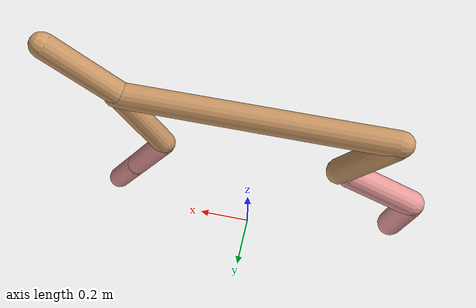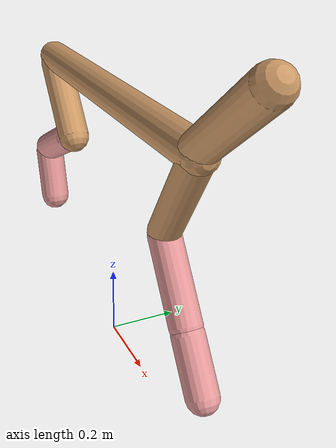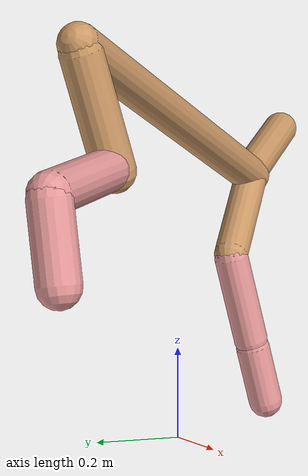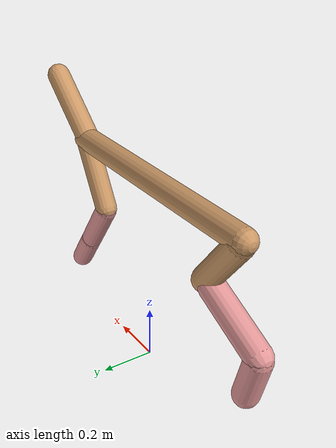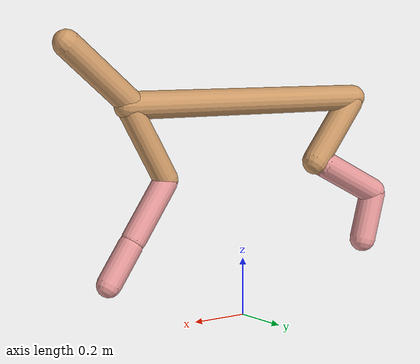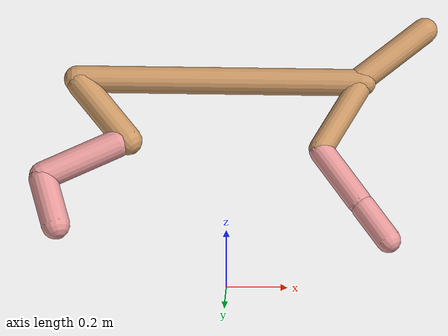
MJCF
<mujoco model="cheetah">
  <compiler angle="radian" coordinate="local" inertiafromgeom="true" settotalmass="14" />
  <default>
    <joint armature=".1" damping=".01" limited="true" solimplimit="0 .8 .03" solreflimit=".02 1" stiffness="8" />
    <geom conaffinity="0" condim="3" contype="1" friction="0.8 .1 .1" rgba="0.8 0.6 .4 1" solimp="0.0 0.8 0.01" solref="0.02 1" />
    <motor ctrllimited="true" ctrlrange="-1 1" />
  </default>
  <size nstack="300000" nuser_geom="1" />
  <option gravity="0 0 -9.81" timestep="0.01" />
  <worldbody>
    <body name="torso" pos="0.0 0.0 0.7401998084804956">
      <joint armature="0" axis="1 0 0" damping="0" limited="false" name="ignorex" pos="0 0 0" stiffness="0" type="slide" />
      <joint armature="0" axis="0 0 1" damping="0" limited="false" name="ignorez" pos="0 0 0" stiffness="0" type="slide" />
      <joint armature="0" axis="0 1 0" damping="0" limited="false" name="ignorey" pos="0 0 0" stiffness="0" type="hinge" />
      <geom fromto="-0.5 0.0 0.0 0.4566659018891733 0.0 0.0" name="torso" size="0.045534365058296444" type="capsule" />
      <geom axisangle="0 1 0 .87" name="head" pos="0.5566659018891732 0.0 0.1" size="0.04392531753691008 0.15" type="capsule" />

      <body name="bthigh" pos="-.5 0 0">
        <joint axis="0 1 0" damping="6" name="bthigh" pos="0 0 0" range="-.52 1.05" stiffness="240" type="hinge" />
        <geom axisangle="0 1 0 -3.8" name="bthigh" pos="0.09210650898913177 0.0 -0.1197384616858713" size="0.047600273173974986 0.1320537121571089" type="capsule" />
        <body name="bshin" pos="0.14421301797826352 0.0 -0.22947692337174258">
          <joint axis="0 1 0" damping="4.5" name="bshin" pos="0 0 0" range="-.785 .785" stiffness="180" type="hinge" />
          <geom axisangle="0 1 0 -2.03" name="bshin" pos="-0.12802119461807576 0.0 -0.06401059730903788" rgba="0.9 0.6 0.6 1" size="0.047600273173974986 0.1366072884383885" type="capsule" />
          <body name="bfoot" pos="-0.2560423892361515 0.0 -0.12802119461807576">
            <joint axis="0 1 0" damping="3" name="bfoot" pos="0 0 0" range="-.4 .785" stiffness="120" type="hinge" />
            <geom axisangle="0 1 0 -.27" name="bfoot" pos="0.02752019178144837 0.0 -0.08898195342668308" rgba="0.9 0.6 0.6 1" size="0.047600273173974986 0.08560723408805682" type="capsule" />
            <inertial mass="10" />
          </body>
        </body>
      </body>
      <body name="fthigh" pos="0.4566659018891732 0.0 0.0">
        <joint axis="0 1 0" damping="4.5" name="fthigh" pos="0 0 0" range="-1.5 0.8" stiffness="180" type="hinge" />
        <geom axisangle="0 1 0 .52" name="fthigh" pos="-0.07281797488537335 0.0 -0.12483081408921144" size="0.041467697738946284 0.13859265117981792" type="capsule" />
        <body name="fshin" pos="-0.1456359497707467 0.0 -0.24966162817842288">
          <joint axis="0 1 0" damping="3" name="fshin" pos="0 0 0" range="-1.2 1.1" stiffness="120" type="hinge" />
          <geom axisangle="0 1 0 -.6" name="fshin" pos="0.06760970759619074 0.0 -0.09361344128703333" rgba="0.9 0.6 0.6 1" size="0.041467697738946284 0.110457300940306" type="capsule" />
          <body name="ffoot" pos="0.13521941519238148 0.0 -0.18722688257406667">
            <joint axis="0 1 0" damping="1.5" name="ffoot" pos="0 0 0" range="-3.1 -0.3" stiffness="60" type="hinge" />
            <geom axisangle="0 1 0 -.6" name="ffoot" pos="0.04659172030581838 0.0 -0.07247600936460638" rgba="0.9 0.6 0.6 1" size="0.041467697738946284 0.0729435006209568" type="capsule" />
            <inertial mass="10" />
          </body>
        </body>
      </body>
    </body>
  </worldbody>
  <actuator>
    <motor gear="120" joint="bthigh" name="bthigh" />
    <motor gear="90" joint="bshin" name="bshin" />
    <motor gear="60" joint="bfoot" name="bfoot" />
    <motor gear="120" joint="fthigh" name="fthigh" />
    <motor gear="60" joint="fshin" name="fshin" />
    <motor gear="30" joint="ffoot" name="ffoot" />
  </actuator>
</mujoco>
